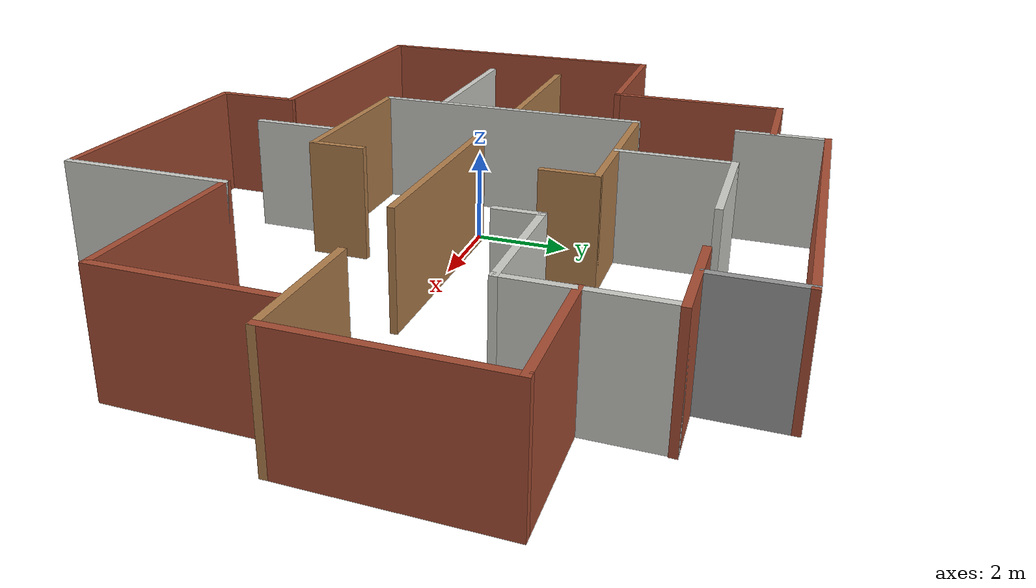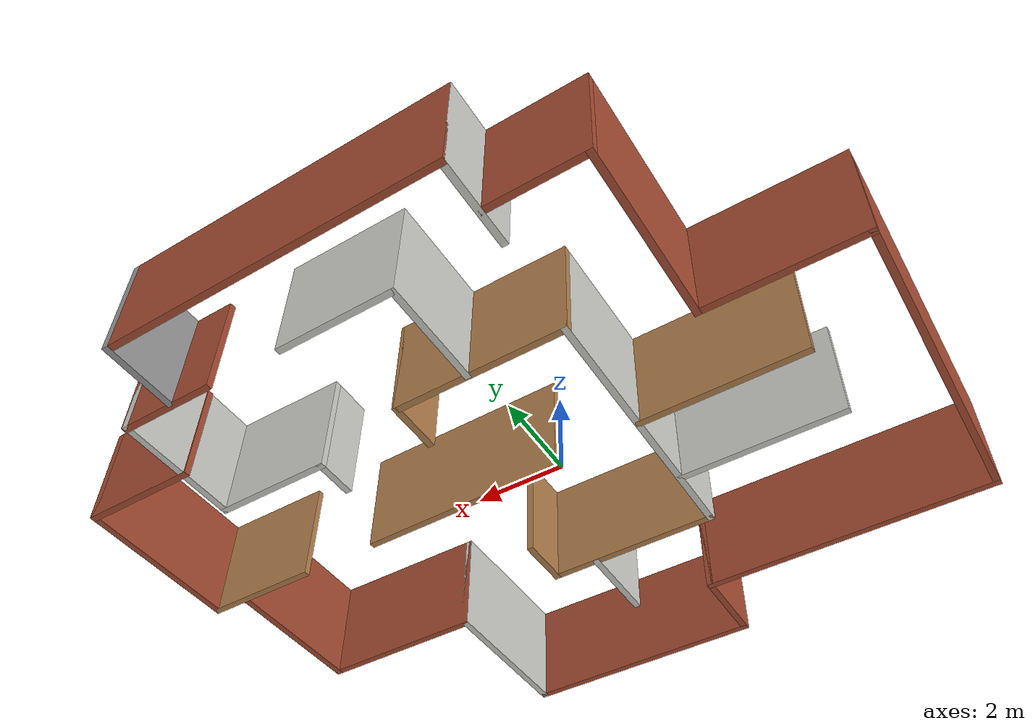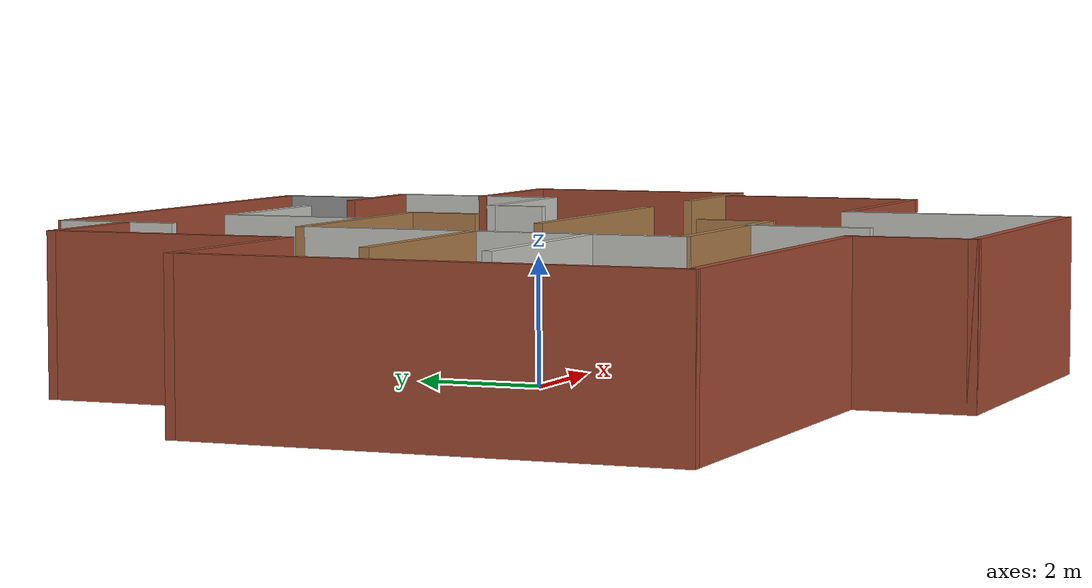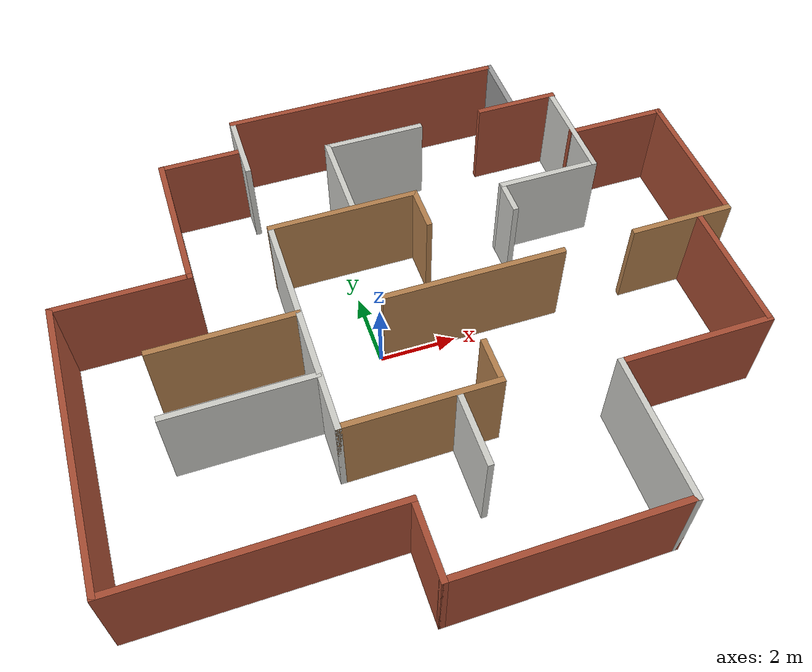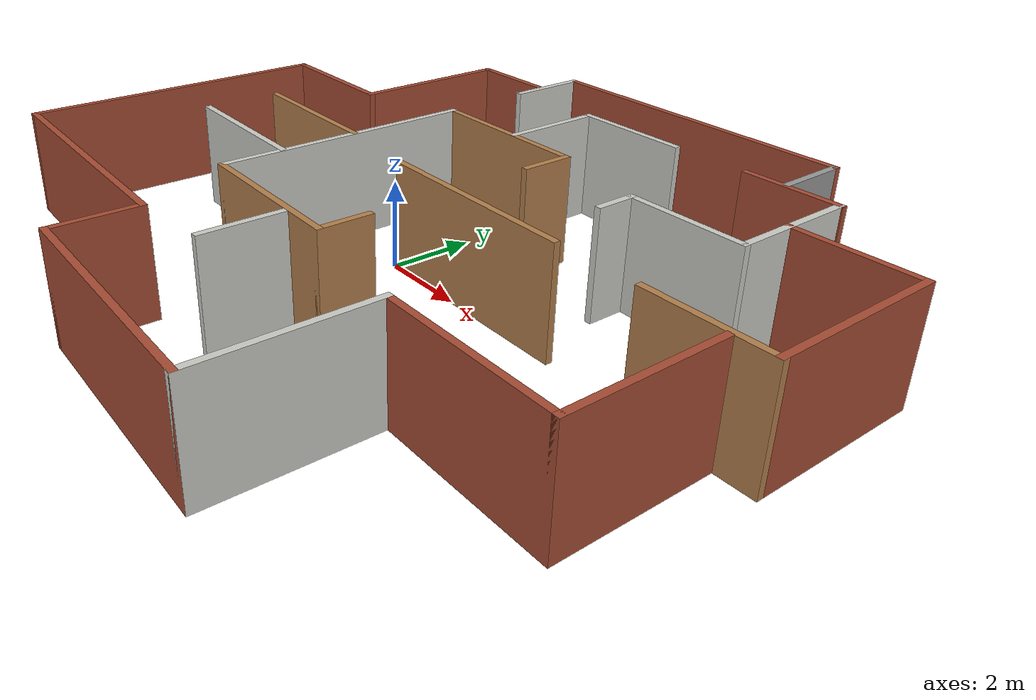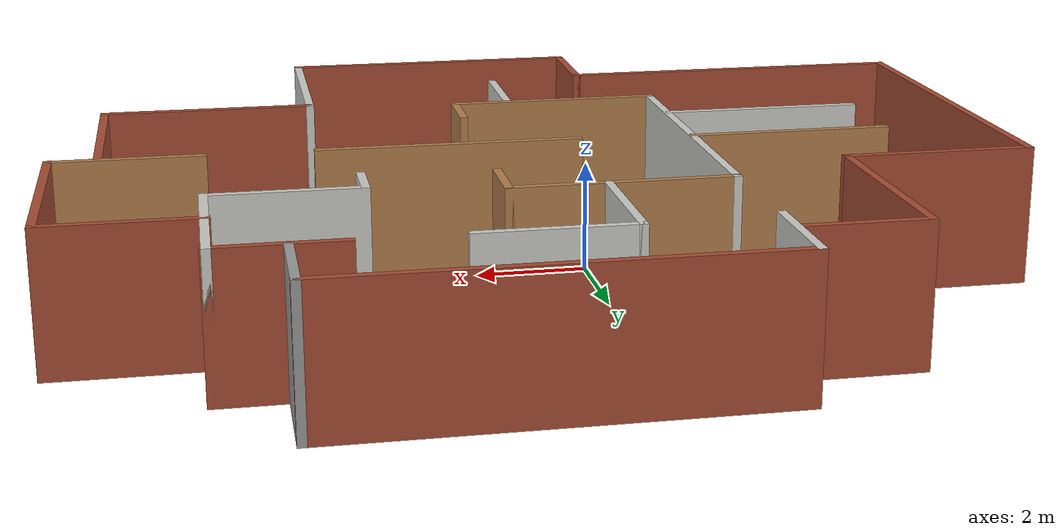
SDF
<?xml version='1.0'?>
<sdf version='1.6'>
  <model name='dat160_w2'>
    <pose frame=''>0.941999 0.045049 0 0 -0 0</pose>
    <link name='Wall_11'>
      <collision name='Wall_11_Collision'>
        <geometry>
          <box>
            <size>4.77349 0.15 2.5</size>
          </box>
        </geometry>
        <pose frame=''>0 0 1.25 0 -0 0</pose>
      </collision>
      <visual name='Wall_11_Visual'>
        <pose frame=''>0 0 1.25 0 -0 0</pose>
        <geometry>
          <box>
            <size>4.77349 0.15 2.5</size>
          </box>
        </geometry>
        <material>
          <script>
            <uri>file://media/materials/scripts/gazebo.material</uri>
            <name>Gazebo/Wood</name>
          </script>
          <ambient>1 1 1 1</ambient>
        </material>
        <meta>
          <layer>0</layer>
        </meta>
      </visual>
      <pose frame=''>1.52891 -0.003828 0 0 -0 -0.004233</pose>
    </link>
    <link name='Wall_3'>
      <collision name='Wall_3_Collision'>
        <geometry>
          <box>
            <size>4 0.15 2.5</size>
          </box>
        </geometry>
        <pose frame=''>0 0 1.25 0 -0 0</pose>
      </collision>
      <visual name='Wall_3_Visual'>
        <pose frame=''>0 0 1.25 0 -0 0</pose>
        <geometry>
          <box>
            <size>4 0.15 2.5</size>
          </box>
        </geometry>
        <material>
          <script>
            <uri>file://media/materials/scripts/gazebo.material</uri>
            <name>Gazebo/Wood</name>
          </script>
          <ambient>1 1 1 1</ambient>
        </material>
        <meta>
          <layer>0</layer>
        </meta>
      </visual>
      <pose frame=''>-0.932632 3.01178 0 0 -0 0</pose>
    </link>
    <link name='Wall_49'>
      <collision name='Wall_49_Collision'>
        <geometry>
          <box>
            <size>2.5 0.15 2.5</size>
          </box>
        </geometry>
        <pose frame=''>0 0 1.25 0 -0 0</pose>
      </collision>
      <visual name='Wall_49_Visual'>
        <pose frame=''>0 0 1.25 0 -0 0</pose>
        <geometry>
          <box>
            <size>2.5 0.15 2.5</size>
          </box>
        </geometry>
        <material>
          <script>
            <uri>file://media/materials/scripts/gazebo.material</uri>
            <name>Gazebo/CeilingTiled</name>
          </script>
          <ambient>1 1 1 1</ambient>
        </material>
        <meta>
          <layer>0</layer>
        </meta>
      </visual>
      <pose frame=''>-0.676416 4.21338 0 0 -0 1.5708</pose>
    </link>
    <link name='Wall_5'>
      <collision name='Wall_5_Collision'>
        <geometry>
          <box>
            <size>6.25 0.15 2.5</size>
          </box>
        </geometry>
        <pose frame=''>0 0 1.25 0 -0 0</pose>
      </collision>
      <visual name='Wall_5_Visual'>
        <pose frame=''>0 0 1.25 0 -0 0</pose>
        <geometry>
          <box>
            <size>6.25 0.15 2.5</size>
          </box>
        </geometry>
        <material>
          <script>
            <uri>file://media/materials/scripts/gazebo.material</uri>
            <name>Gazebo/CeilingTiled</name>
          </script>
          <ambient>1 1 1 1</ambient>
        </material>
        <meta>
          <layer>0</layer>
        </meta>
      </visual>
      <pose frame=''>-2.85763 -0.03822 0 0 -0 -1.5708</pose>
    </link>
    <link name='Wall_50'>
      <collision name='Wall_50_Collision'>
        <geometry>
          <box>
            <size>2.75 0.15 2.5</size>
          </box>
        </geometry>
        <pose frame=''>0 0 1.25 0 -0 0</pose>
      </collision>
      <visual name='Wall_50_Visual'>
        <pose frame=''>0 0 1.25 0 -0 0</pose>
        <geometry>
          <box>
            <size>2.75 0.15 2.5</size>
          </box>
        </geometry>
        <material>
          <script>
            <uri>file://media/materials/scripts/gazebo.material</uri>
            <name>Gazebo/CeilingTiled</name>
          </script>
          <ambient>1 1 1 1</ambient>
        </material>
        <meta>
          <layer>0</layer>
        </meta>
      </visual>
      <pose frame=''>0.623584 5.38838 0 0 -0 0</pose>
    </link>
    <link name='Wall_52'>
      <collision name='Wall_52_Collision'>
        <geometry>
          <box>
            <size>2.2766 0.15 2.5</size>
          </box>
        </geometry>
        <pose frame=''>0 0 1.25 0 -0 0</pose>
      </collision>
      <visual name='Wall_52_Visual'>
        <pose frame=''>0 0 1.25 0 -0 0</pose>
        <geometry>
          <box>
            <size>2.2766 0.15 2.5</size>
          </box>
        </geometry>
        <material>
          <script>
            <uri>file://media/materials/scripts/gazebo.material</uri>
            <name>Gazebo/Bricks</name>
          </script>
          <ambient>1 1 1 1</ambient>
        </material>
        <meta>
          <layer>0</layer>
        </meta>
      </visual>
      <pose frame=''>4.82912 5.4058 0 0 -0 0</pose>
    </link>
    <link name='Wall_53'>
      <collision name='Wall_53_Collision'>
        <geometry>
          <box>
            <size>3 0.15 2.5</size>
          </box>
        </geometry>
        <pose frame=''>0 0 1.25 0 -0 0</pose>
      </collision>
      <visual name='Wall_53_Visual'>
        <pose frame=''>0 0 1.25 0 -0 0</pose>
        <geometry>
          <box>
            <size>3 0.15 2.5</size>
          </box>
        </geometry>
        <material>
          <script>
            <uri>file://media/materials/scripts/gazebo.material</uri>
            <name>Gazebo/CeilingTiled</name>
          </script>
          <ambient>1 1 1 1</ambient>
        </material>
        <meta>
          <layer>0</layer>
        </meta>
      </visual>
      <pose frame=''>5.86582 3.9808 0 0 -0 -1.5708</pose>
    </link>
    <link name='Wall_55'>
      <collision name='Wall_55_Collision'>
        <geometry>
          <box>
            <size>2.75 0.15 2.5</size>
          </box>
        </geometry>
        <pose frame=''>0 0 1.25 0 -0 0</pose>
      </collision>
      <visual name='Wall_55_Visual'>
        <pose frame=''>0 0 1.25 0 -0 0</pose>
        <geometry>
          <box>
            <size>2.75 0.15 2.5</size>
          </box>
        </geometry>
        <material>
          <script>
            <uri>file://media/materials/scripts/gazebo.material</uri>
            <name>Gazebo/CeilingTiled</name>
          </script>
          <ambient>1 1 1 1</ambient>
        </material>
        <meta>
          <layer>0</layer>
        </meta>
      </visual>
      <pose frame=''>4.56582 2.5558 0 0 -0 3.14159</pose>
    </link>
    <link name='Wall_56'>
      <collision name='Wall_56_Collision'>
        <geometry>
          <box>
            <size>1 0.15 2.5</size>
          </box>
        </geometry>
        <pose frame=''>0 0 1.25 0 -0 0</pose>
      </collision>
      <visual name='Wall_56_Visual'>
        <pose frame=''>0 0 1.25 0 -0 0</pose>
        <geometry>
          <box>
            <size>1 0.15 2.5</size>
          </box>
        </geometry>
        <material>
          <script>
            <uri>file://media/materials/scripts/gazebo.material</uri>
            <name>Gazebo/CeilingTiled</name>
          </script>
          <ambient>1 1 1 1</ambient>
        </material>
        <meta>
          <layer>0</layer>
        </meta>
      </visual>
      <pose frame=''>3.26582 2.1308 0 0 -0 -1.5708</pose>
    </link>
    <link name='Wall_58'>
      <collision name='Wall_58_Collision'>
        <geometry>
          <box>
            <size>1.75 0.15 2.5</size>
          </box>
        </geometry>
        <pose frame=''>0 0 1.25 0 -0 0</pose>
      </collision>
      <visual name='Wall_58_Visual'>
        <pose frame=''>0 0 1.25 0 -0 0</pose>
        <geometry>
          <box>
            <size>1.75 0.15 2.5</size>
          </box>
        </geometry>
        <material>
          <script>
            <uri>file://media/materials/scripts/gazebo.material</uri>
            <name>Gazebo/Grey</name>
          </script>
          <ambient>1 1 1 1</ambient>
        </material>
        <meta>
          <layer>0</layer>
        </meta>
      </visual>
      <pose frame=''>4.67022 6.2856 0 0 -0 1.5708</pose>
    </link>
    <link name='Wall_59'>
      <collision name='Wall_59_Collision'>
        <geometry>
          <box>
            <size>7.75 0.15 2.5</size>
          </box>
        </geometry>
        <pose frame=''>0 0 1.25 0 -0 0</pose>
      </collision>
      <visual name='Wall_59_Visual'>
        <pose frame=''>0 0 1.25 0 -0 0</pose>
        <geometry>
          <box>
            <size>7.75 0.15 2.5</size>
          </box>
        </geometry>
        <material>
          <script>
            <uri>file://media/materials/scripts/gazebo.material</uri>
            <name>Gazebo/Bricks</name>
          </script>
          <ambient>1 1 1 1</ambient>
        </material>
        <meta>
          <layer>0</layer>
        </meta>
      </visual>
      <pose frame=''>0.870224 7.0856 0 0 -0 3.14159</pose>
    </link>
    <link name='Wall_6'>
      <collision name='Wall_6_Collision'>
        <geometry>
          <box>
            <size>4 0.15 2.5</size>
          </box>
        </geometry>
        <pose frame=''>0 0 1.25 0 -0 0</pose>
      </collision>
      <visual name='Wall_6_Visual'>
        <pose frame=''>0 0 1.25 0 -0 0</pose>
        <geometry>
          <box>
            <size>4 0.15 2.5</size>
          </box>
        </geometry>
        <material>
          <script>
            <uri>file://media/materials/scripts/gazebo.material</uri>
            <name>Gazebo/Wood</name>
          </script>
          <ambient>1 1 1 1</ambient>
        </material>
        <meta>
          <layer>0</layer>
        </meta>
      </visual>
      <pose frame=''>-0.932632 -3.08822 0 0 -0 0</pose>
    </link>
    <link name='Wall_60'>
      <collision name='Wall_60_Collision'>
        <geometry>
          <box>
            <size>2 0.15 2.5</size>
          </box>
        </geometry>
        <pose frame=''>0 0 1.25 0 -0 0</pose>
      </collision>
      <visual name='Wall_60_Visual'>
        <pose frame=''>0 0 1.25 0 -0 0</pose>
        <geometry>
          <box>
            <size>2 0.15 2.5</size>
          </box>
        </geometry>
        <material>
          <script>
            <uri>file://media/materials/scripts/gazebo.material</uri>
            <name>Gazebo/CeilingTiled</name>
          </script>
          <ambient>1 1 1 1</ambient>
        </material>
        <meta>
          <layer>0</layer>
        </meta>
      </visual>
      <pose frame=''>-2.92978 6.1606 0 0 -0 -1.5708</pose>
    </link>
    <link name='Wall_62'>
      <collision name='Wall_62_Collision'>
        <geometry>
          <box>
            <size>2.25 0.15 2.5</size>
          </box>
        </geometry>
        <pose frame=''>0 0 1.25 0 -0 0</pose>
      </collision>
      <visual name='Wall_62_Visual'>
        <pose frame=''>0 0 1.25 0 -0 0</pose>
        <geometry>
          <box>
            <size>2.25 0.15 2.5</size>
          </box>
        </geometry>
        <material>
          <script>
            <uri>file://media/materials/scripts/gazebo.material</uri>
            <name>Gazebo/Bricks</name>
          </script>
          <ambient>1 1 1 1</ambient>
        </material>
        <meta>
          <layer>0</layer>
        </meta>
      </visual>
      <pose frame=''>-4.04063 5.9644 0 0 -0 3.14159</pose>
    </link>
    <link name='Wall_63'>
      <collision name='Wall_63_Collision'>
        <geometry>
          <box>
            <size>4 0.15 2.5</size>
          </box>
        </geometry>
        <pose frame=''>0 0 1.25 0 -0 0</pose>
      </collision>
      <visual name='Wall_63_Visual'>
        <pose frame=''>0 0 1.25 0 -0 0</pose>
        <geometry>
          <box>
            <size>4 0.15 2.5</size>
          </box>
        </geometry>
        <material>
          <script>
            <uri>file://media/materials/scripts/gazebo.material</uri>
            <name>Gazebo/Bricks</name>
          </script>
          <ambient>1 1 1 1</ambient>
        </material>
        <meta>
          <layer>0</layer>
        </meta>
      </visual>
      <pose frame=''>-5.09063 4.0394 0 0 -0 -1.5708</pose>
    </link>
    <link name='Wall_65'>
      <collision name='Wall_65_Collision'>
        <geometry>
          <box>
            <size>3.75 0.15 2.5</size>
          </box>
        </geometry>
        <pose frame=''>0 0 1.25 0 -0 0</pose>
      </collision>
      <visual name='Wall_65_Visual'>
        <pose frame=''>0 0 1.25 0 -0 0</pose>
        <geometry>
          <box>
            <size>3.75 0.15 2.5</size>
          </box>
        </geometry>
        <material>
          <script>
            <uri>file://media/materials/scripts/gazebo.material</uri>
            <name>Gazebo/Wood</name>
          </script>
          <ambient>1 1 1 1</ambient>
        </material>
        <meta>
          <layer>0</layer>
        </meta>
      </visual>
      <pose frame=''>-4.68423 0.192159 0 0 -0 3.14159</pose>
    </link>
    <link name='Wall_67'>
      <collision name='Wall_67_Collision'>
        <geometry>
          <box>
            <size>3.5 0.15 2.5</size>
          </box>
        </geometry>
        <pose frame=''>0 0 1.25 0 -0 0</pose>
      </collision>
      <visual name='Wall_67_Visual'>
        <pose frame=''>0 0 1.25 0 -0 0</pose>
        <geometry>
          <box>
            <size>3.5 0.15 2.5</size>
          </box>
        </geometry>
        <material>
          <script>
            <uri>file://media/materials/scripts/gazebo.material</uri>
            <name>Gazebo/Bricks</name>
          </script>
          <ambient>1 1 1 1</ambient>
        </material>
        <meta>
          <layer>0</layer>
        </meta>
      </visual>
      <pose frame=''>-6.76563 2.1144 0 0 -0 3.14159</pose>
    </link>
    <link name='Wall_68'>
      <collision name='Wall_68_Collision'>
        <geometry>
          <box>
            <size>7.5 0.15 2.5</size>
          </box>
        </geometry>
        <pose frame=''>0 0 1.25 0 -0 0</pose>
      </collision>
      <visual name='Wall_68_Visual'>
        <pose frame=''>0 0 1.25 0 -0 0</pose>
        <geometry>
          <box>
            <size>7.5 0.15 2.5</size>
          </box>
        </geometry>
        <material>
          <script>
            <uri>file://media/materials/scripts/gazebo.material</uri>
            <name>Gazebo/Bricks</name>
          </script>
          <ambient>1 1 1 1</ambient>
        </material>
        <meta>
          <layer>0</layer>
        </meta>
      </visual>
      <pose frame=''>-8.44063 -1.5606 0 0 -0 -1.5708</pose>
    </link>
    <link name='Wall_7'>
      <collision name='Wall_7_Collision'>
        <geometry>
          <box>
            <size>1.25 0.15 2.5</size>
          </box>
        </geometry>
        <pose frame=''>0 0 1.25 0 -0 0</pose>
      </collision>
      <visual name='Wall_7_Visual'>
        <pose frame=''>0 0 1.25 0 -0 0</pose>
        <geometry>
          <box>
            <size>1.25 0.15 2.5</size>
          </box>
        </geometry>
        <material>
          <script>
            <uri>file://media/materials/scripts/gazebo.material</uri>
            <name>Gazebo/Wood</name>
          </script>
          <ambient>1 1 1 1</ambient>
        </material>
        <meta>
          <layer>0</layer>
        </meta>
      </visual>
      <pose frame=''>0.992368 -2.53822 0 0 -0 1.5708</pose>
    </link>
    <link name='Wall_71'>
      <collision name='Wall_71_Collision'>
        <geometry>
          <box>
            <size>3.75 0.15 2.5</size>
          </box>
        </geometry>
        <pose frame=''>0 0 1.25 0 -0 0</pose>
      </collision>
      <visual name='Wall_71_Visual'>
        <pose frame=''>0 0 1.25 0 -0 0</pose>
        <geometry>
          <box>
            <size>3.75 0.15 2.5</size>
          </box>
        </geometry>
        <material>
          <script>
            <uri>file://media/materials/scripts/gazebo.material</uri>
            <name>Gazebo/CeilingTiled</name>
          </script>
          <ambient>1 1 1 1</ambient>
        </material>
        <meta>
          <layer>0</layer>
        </meta>
      </visual>
      <pose frame=''>-4.70186 -1.64325 0 0 -0 0</pose>
    </link>
    <link name='Wall_75'>
      <collision name='Wall_75_Collision'>
        <geometry>
          <box>
            <size>6.75 0.15 2.5</size>
          </box>
        </geometry>
        <pose frame=''>0 0 1.25 0 -0 0</pose>
      </collision>
      <visual name='Wall_75_Visual'>
        <pose frame=''>0 0 1.25 0 -0 0</pose>
        <geometry>
          <box>
            <size>6.75 0.15 2.5</size>
          </box>
        </geometry>
        <material>
          <script>
            <uri>file://media/materials/scripts/gazebo.material</uri>
            <name>Gazebo/Bricks</name>
          </script>
          <ambient>1 1 1 1</ambient>
        </material>
        <meta>
          <layer>0</layer>
        </meta>
      </visual>
      <pose frame=''>-5.14063 -5.2356 0 0 -0 0</pose>
    </link>
    <link name='Wall_76'>
      <collision name='Wall_76_Collision'>
        <geometry>
          <box>
            <size>2 0.15 2.5</size>
          </box>
        </geometry>
        <pose frame=''>0 0 1.25 0 -0 0</pose>
      </collision>
      <visual name='Wall_76_Visual'>
        <pose frame=''>0 0 1.25 0 -0 0</pose>
        <geometry>
          <box>
            <size>2 0.15 2.5</size>
          </box>
        </geometry>
        <material>
          <script>
            <uri>file://media/materials/scripts/gazebo.material</uri>
            <name>Gazebo/Bricks</name>
          </script>
          <ambient>1 1 1 1</ambient>
        </material>
        <meta>
          <layer>0</layer>
        </meta>
      </visual>
      <pose frame=''>-1.84063 -6.1606 0 0 -0 -1.5708</pose>
    </link>
    <link name='Wall_77'>
      <collision name='Wall_77_Collision'>
        <geometry>
          <box>
            <size>5.75 0.15 2.5</size>
          </box>
        </geometry>
        <pose frame=''>0 0 1.25 0 -0 0</pose>
      </collision>
      <visual name='Wall_77_Visual'>
        <pose frame=''>0 0 1.25 0 -0 0</pose>
        <geometry>
          <box>
            <size>5.75 0.15 2.5</size>
          </box>
        </geometry>
        <material>
          <script>
            <uri>file://media/materials/scripts/gazebo.material</uri>
            <name>Gazebo/Bricks</name>
          </script>
          <ambient>1 1 1 1</ambient>
        </material>
        <meta>
          <layer>0</layer>
        </meta>
      </visual>
      <pose frame=''>0.959367 -7.0856 0 0 -0 0</pose>
    </link>
    <link name='Wall_78'>
      <collision name='Wall_78_Collision'>
        <geometry>
          <box>
            <size>3.75 0.15 2.5</size>
          </box>
        </geometry>
        <pose frame=''>0 0 1.25 0 -0 0</pose>
      </collision>
      <visual name='Wall_78_Visual'>
        <pose frame=''>0 0 1.25 0 -0 0</pose>
        <geometry>
          <box>
            <size>3.75 0.15 2.5</size>
          </box>
        </geometry>
        <material>
          <script>
            <uri>file://media/materials/scripts/gazebo.material</uri>
            <name>Gazebo/CeilingTiled</name>
          </script>
          <ambient>1 1 1 1</ambient>
        </material>
        <meta>
          <layer>0</layer>
        </meta>
      </visual>
      <pose frame=''>3.75937 -5.2856 0 0 -0 1.5708</pose>
    </link>
    <link name='Wall_79'>
      <collision name='Wall_79_Collision'>
        <geometry>
          <box>
            <size>4 0.15 2.5</size>
          </box>
        </geometry>
        <pose frame=''>0 0 1.25 0 -0 0</pose>
      </collision>
      <visual name='Wall_79_Visual'>
        <pose frame=''>0 0 1.25 0 -0 0</pose>
        <geometry>
          <box>
            <size>4 0.15 2.5</size>
          </box>
        </geometry>
        <material>
          <script>
            <uri>file://media/materials/scripts/gazebo.material</uri>
            <name>Gazebo/Bricks</name>
          </script>
          <ambient>1 1 1 1</ambient>
        </material>
        <meta>
          <layer>0</layer>
        </meta>
      </visual>
      <pose frame=''>5.68437 -3.4856 0 0 -0 0</pose>
    </link>
    <link name='Wall_80'>
      <collision name='Wall_80_Collision'>
        <geometry>
          <box>
            <size>3.5 0.15 2.5</size>
          </box>
        </geometry>
        <pose frame=''>0 0 1.25 0 -0 0</pose>
      </collision>
      <visual name='Wall_80_Visual'>
        <pose frame=''>0 0 1.25 0 -0 0</pose>
        <geometry>
          <box>
            <size>3.5 0.15 2.5</size>
          </box>
        </geometry>
        <material>
          <script>
            <uri>file://media/materials/scripts/gazebo.material</uri>
            <name>Gazebo/Bricks</name>
          </script>
          <ambient>1 1 1 1</ambient>
        </material>
        <meta>
          <layer>0</layer>
        </meta>
      </visual>
      <pose frame=''>7.60937 -1.8106 0 0 -0 1.5708</pose>
    </link>
    <link name='Wall_82'>
      <collision name='Wall_82_Collision'>
        <geometry>
          <box>
            <size>2 0.15 2.5</size>
          </box>
        </geometry>
        <pose frame=''>0 0 1.25 0 -0 0</pose>
      </collision>
      <visual name='Wall_82_Visual'>
        <pose frame=''>0 0 1.25 0 -0 0</pose>
        <geometry>
          <box>
            <size>2 0.15 2.5</size>
          </box>
        </geometry>
        <material>
          <script>
            <uri>file://media/materials/scripts/gazebo.material</uri>
            <name>Gazebo/CeilingTiled</name>
          </script>
          <ambient>1 1 1 1</ambient>
        </material>
        <meta>
          <layer>0</layer>
        </meta>
      </visual>
      <pose frame=''>-0.038011 -4.03127 0 0 -0 -1.5708</pose>
    </link>
    <link name='Wall_84'>
      <collision name='Wall_84_Collision'>
        <geometry>
          <box>
            <size>2.75 0.15 2.5</size>
          </box>
        </geometry>
        <pose frame=''>0 0 1.25 0 -0 0</pose>
      </collision>
      <visual name='Wall_84_Visual'>
        <pose frame=''>0 0 1.25 0 -0 0</pose>
        <geometry>
          <box>
            <size>2.75 0.15 2.5</size>
          </box>
        </geometry>
        <material>
          <script>
            <uri>file://media/materials/scripts/gazebo.material</uri>
            <name>Gazebo/Bricks</name>
          </script>
          <ambient>1 1 1 1</ambient>
        </material>
        <meta>
          <layer>0</layer>
        </meta>
      </visual>
      <pose frame=''>7.14063 3.83639 0 0 -0 0</pose>
    </link>
    <link name='Wall_85'>
      <collision name='Wall_85_Collision'>
        <geometry>
          <box>
            <size>4 0.15 2.5</size>
          </box>
        </geometry>
        <pose frame=''>0 0 1.25 0 -0 0</pose>
      </collision>
      <visual name='Wall_85_Visual'>
        <pose frame=''>0 0 1.25 0 -0 0</pose>
        <geometry>
          <box>
            <size>4 0.15 2.5</size>
          </box>
        </geometry>
        <material>
          <script>
            <uri>file://media/materials/scripts/gazebo.material</uri>
            <name>Gazebo/Bricks</name>
          </script>
          <ambient>1 1 1 1</ambient>
        </material>
        <meta>
          <layer>0</layer>
        </meta>
      </visual>
      <pose frame=''>8.44063 1.91139 0 0 -0 -1.5708</pose>
    </link>
    <link name='Wall_88'>
      <collision name='Wall_88_Collision'>
        <geometry>
          <box>
            <size>2.75 0.15 2.5</size>
          </box>
        </geometry>
        <pose frame=''>0 0 1.25 0 -0 0</pose>
      </collision>
      <visual name='Wall_88_Visual'>
        <pose frame=''>0 0 1.25 0 -0 0</pose>
        <geometry>
          <box>
            <size>2.75 0.15 2.5</size>
          </box>
        </geometry>
        <material>
          <script>
            <uri>file://media/materials/scripts/gazebo.material</uri>
            <name>Gazebo/Wood</name>
          </script>
          <ambient>1 1 1 1</ambient>
        </material>
        <meta>
          <layer>0</layer>
        </meta>
      </visual>
      <pose frame=''>7.14063 -0.013614 0 0 -0 3.14159</pose>
    </link>
    <link name='Wall_9'>
      <collision name='Wall_9_Collision'>
        <geometry>
          <box>
            <size>1.25 0.15 2.5</size>
          </box>
        </geometry>
        <pose frame=''>0 0 1.25 0 -0 0</pose>
      </collision>
      <visual name='Wall_9_Visual'>
        <pose frame=''>0 0 1.25 0 -0 0</pose>
        <geometry>
          <box>
            <size>1.25 0.15 2.5</size>
          </box>
        </geometry>
        <material>
          <script>
            <uri>file://media/materials/scripts/gazebo.material</uri>
            <name>Gazebo/Wood</name>
          </script>
          <ambient>1 1 1 1</ambient>
        </material>
        <meta>
          <layer>0</layer>
        </meta>
      </visual>
      <pose frame=''>0.992368 2.46178 0 0 -0 -1.5708</pose>
    </link>
    <static>1</static>
  </model>
</sdf>
